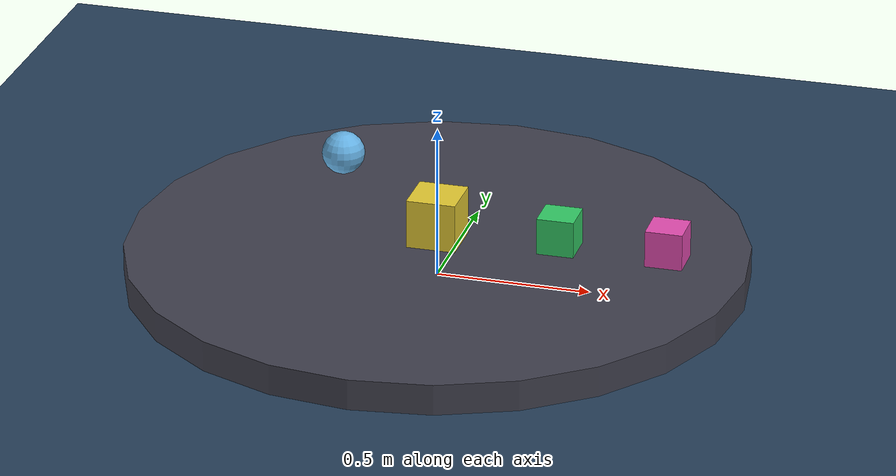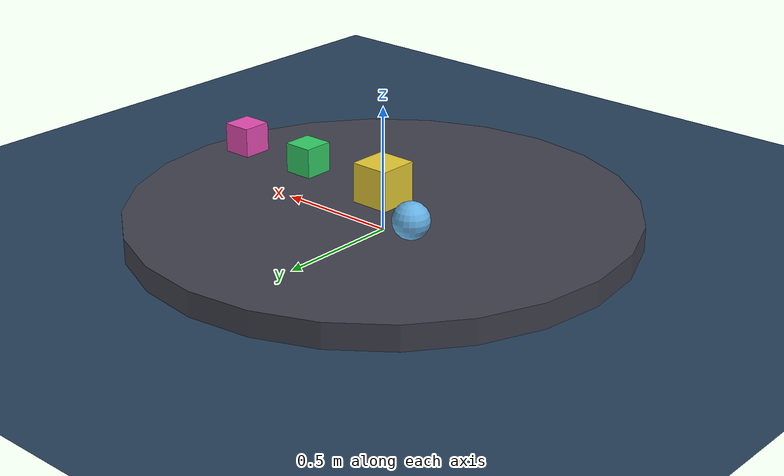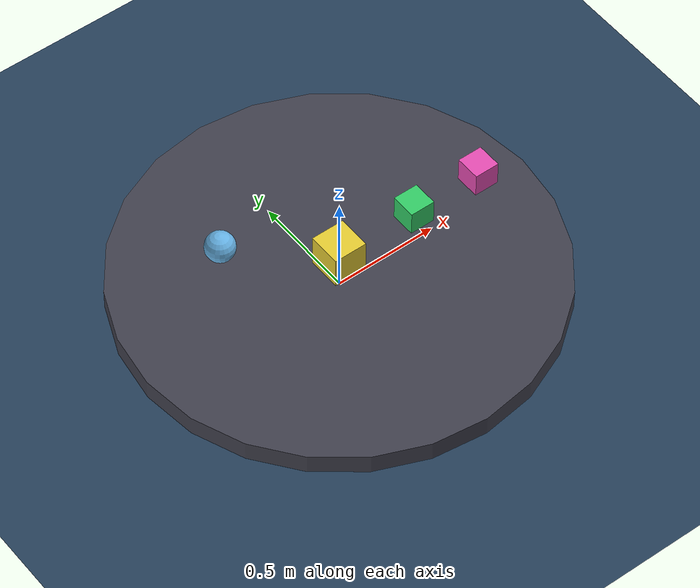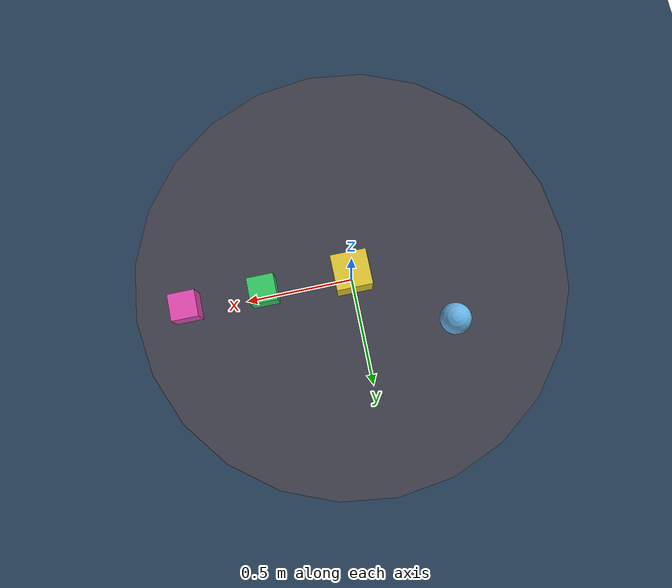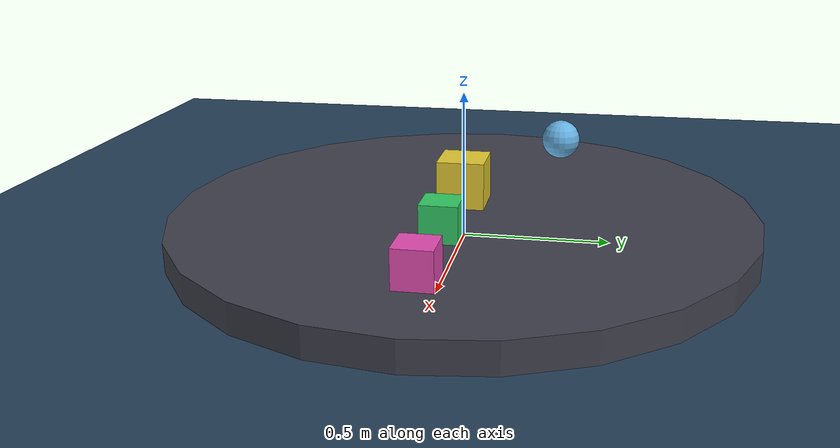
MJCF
<mujoco model="surfacevel turntable">
  <!-- record player: a static cylinder with angular surfacevel about its axis;
       condim 6 so the torsional row spins centered objects and rolling rows engage -->

  <visual>
    <headlight diffuse=".8 .8 .8" ambient=".2 .2 .2"/>
  </visual>

  <asset>
    <texture type="skybox" builtin="gradient" rgb1=".3 .5 .7" rgb2="0 0 0" width="32" height="512"/>
    <texture name="grid" type="2d" builtin="checker" rgb1=".1 .2 .3" rgb2=".2 .3 .4" width="300" height="300"/>
    <material name="grid" texture="grid" texrepeat="8 8" reflectance=".2"/>
    <material name="platter" rgba=".25 .25 .3 1"/>
  </asset>

  <worldbody>
    <light pos="0 0 3" dir="0 0 -1"/>
    <geom name="floor" type="plane" size="3 3 .1" material="grid"/>

    <!-- platter spinning at 1 rad/s about +z, top surface at z=0.1 -->
    <geom name="platter" type="cylinder" size="1 .05" pos="0 0 .05" material="platter" condim="6" friction="1 .01 .003" surfacevel="0 0 0  0 0 1"/>

    <!-- centered box: pure torsional spin-up -->
    <body name="center" pos="0 0 .2">
      <freejoint/>
      <geom type="box" size=".08 .08 .08" rgba=".9 .8 .2 1" mass=".3"/>
    </body>

    <!-- boxes at increasing radii: tangential speed grows with r -->
    <body name="mid" pos=".4 0 .2">
      <freejoint/>
      <geom type="box" size=".06 .06 .06" rgba=".2 .8 .4 1" mass=".3"/>
    </body>
    <body name="rim" pos=".75 0 .2">
      <freejoint/>
      <geom type="box" size=".06 .06 .06" rgba=".9 .3 .7 1" mass=".3"/>
    </body>

    <!-- ball: rolling rows vs the spinning surface -->
    <body name="ball" pos="-.4 .3 .25">
      <freejoint/>
      <geom type="sphere" size=".07" rgba=".4 .7 .9 1" mass=".3"/>
    </body>
  </worldbody>
</mujoco>
